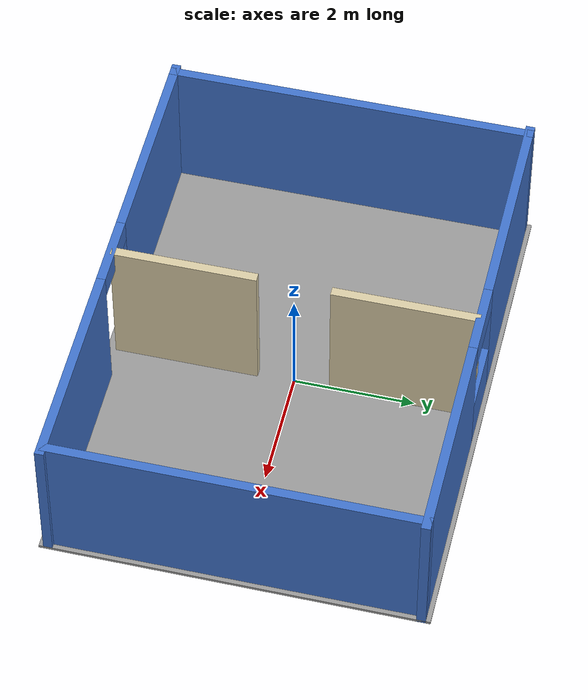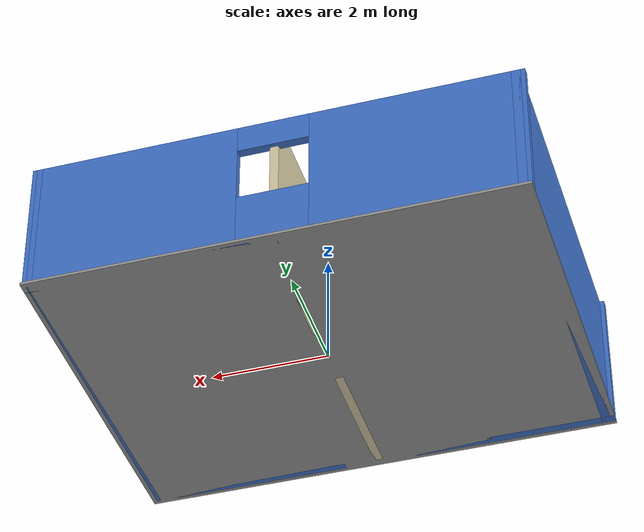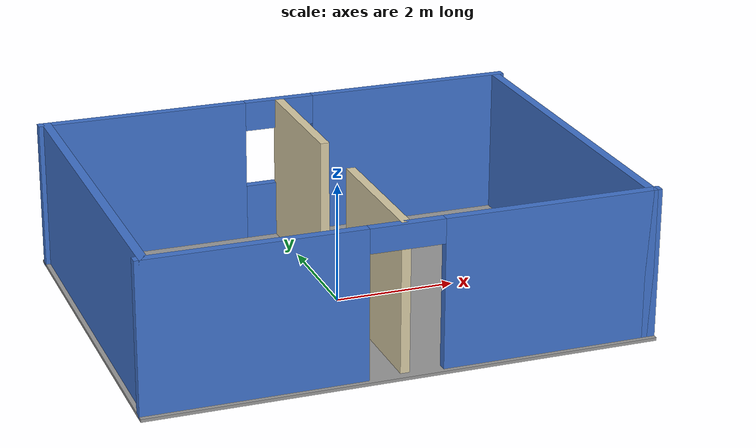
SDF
<?xml version="1.0" ?>
<sdf version="1.6">
  <model name="my_building">
    <static>true</static>
    <link name="Floor">
      <pose>0 0 0.025 0 0 0</pose>
      <collision name="c">
        <geometry><box><size>8.3 6.3 0.05</size></box></geometry>
      </collision>
      <visual name="v">
        <geometry><box><size>8.3 6.3 0.05</size></box></geometry>
        <material><ambient>0.6 0.6 0.6 1</ambient><diffuse>0.6 0.6 0.6 1</diffuse></material>
      </visual>
    </link>
    <link name="Wall_N_left">
      <pose>-2.375 3 1.25 0 0 0</pose>
      <collision name="c">
        <geometry><box><size>3.55 0.15 2.5</size></box></geometry>
      </collision>
      <visual name="v">
        <geometry><box><size>3.55 0.15 2.5</size></box></geometry>
        <material><ambient>0.25 0.45 0.8 1</ambient><diffuse>0.25 0.45 0.8 1</diffuse></material>
      </visual>
    </link>
    <link name="Wall_N_right">
      <pose>2.375 3 1.25 0 0 0</pose>
      <collision name="c">
        <geometry><box><size>3.55 0.15 2.5</size></box></geometry>
      </collision>
      <visual name="v">
        <geometry><box><size>3.55 0.15 2.5</size></box></geometry>
        <material><ambient>0.25 0.45 0.8 1</ambient><diffuse>0.25 0.45 0.8 1</diffuse></material>
      </visual>
    </link>
    <link name="Wall_N_sill">
      <pose>0 3 0.5 0 0 0</pose>
      <collision name="c">
        <geometry><box><size>1.2 0.15 1.0</size></box></geometry>
      </collision>
      <visual name="v">
        <geometry><box><size>1.2 0.15 1.0</size></box></geometry>
        <material><ambient>0.25 0.45 0.8 1</ambient><diffuse>0.25 0.45 0.8 1</diffuse></material>
      </visual>
    </link>
    <link name="Wall_N_lintel">
      <pose>0 3 2.25 0 0 0</pose>
      <collision name="c">
        <geometry><box><size>1.2 0.15 0.5</size></box></geometry>
      </collision>
      <visual name="v">
        <geometry><box><size>1.2 0.15 0.5</size></box></geometry>
        <material><ambient>0.25 0.45 0.8 1</ambient><diffuse>0.25 0.45 0.8 1</diffuse></material>
      </visual>
    </link>
    <link name="Wall_S_left">
      <pose>-2.375 -3 1.25 0 0 0</pose>
      <collision name="c">
        <geometry><box><size>3.55 0.15 2.5</size></box></geometry>
      </collision>
      <visual name="v">
        <geometry><box><size>3.55 0.15 2.5</size></box></geometry>
        <material><ambient>0.25 0.45 0.8 1</ambient><diffuse>0.25 0.45 0.8 1</diffuse></material>
      </visual>
    </link>
    <link name="Wall_S_right">
      <pose>2.375 -3 1.25 0 0 0</pose>
      <collision name="c">
        <geometry><box><size>3.55 0.15 2.5</size></box></geometry>
      </collision>
      <visual name="v">
        <geometry><box><size>3.55 0.15 2.5</size></box></geometry>
        <material><ambient>0.25 0.45 0.8 1</ambient><diffuse>0.25 0.45 0.8 1</diffuse></material>
      </visual>
    </link>
    <link name="Wall_S_lintel">
      <pose>0 -3 2.3 0 0 0</pose>
      <collision name="c">
        <geometry><box><size>1.2 0.15 0.4</size></box></geometry>
      </collision>
      <visual name="v">
        <geometry><box><size>1.2 0.15 0.4</size></box></geometry>
        <material><ambient>0.25 0.45 0.8 1</ambient><diffuse>0.25 0.45 0.8 1</diffuse></material>
      </visual>
    </link>
    <link name="Wall_E">
      <pose>4 0 1.25 0 0 0</pose>
      <collision name="c">
        <geometry><box><size>0.15 6.15 2.5</size></box></geometry>
      </collision>
      <visual name="v">
        <geometry><box><size>0.15 6.15 2.5</size></box></geometry>
        <material><ambient>0.25 0.45 0.8 1</ambient><diffuse>0.25 0.45 0.8 1</diffuse></material>
      </visual>
    </link>
    <link name="Wall_W">
      <pose>-4 0 1.25 0 0 0</pose>
      <collision name="c">
        <geometry><box><size>0.15 6.15 2.5</size></box></geometry>
      </collision>
      <visual name="v">
        <geometry><box><size>0.15 6.15 2.5</size></box></geometry>
        <material><ambient>0.25 0.45 0.8 1</ambient><diffuse>0.25 0.45 0.8 1</diffuse></material>
      </visual>
    </link>
    <link name="Wall_D_north">
      <pose>0 1.8 1.25 0 0 0</pose>
      <collision name="c">
        <geometry><box><size>0.15 2.4 2.5</size></box></geometry>
      </collision>
      <visual name="v">
        <geometry><box><size>0.15 2.4 2.5</size></box></geometry>
        <material><ambient>0.85 0.8 0.65 1</ambient><diffuse>0.85 0.8 0.65 1</diffuse></material>
      </visual>
    </link>
    <link name="Wall_D_south">
      <pose>0 -1.8 1.25 0 0 0</pose>
      <collision name="c">
        <geometry><box><size>0.15 2.4 2.5</size></box></geometry>
      </collision>
      <visual name="v">
        <geometry><box><size>0.15 2.4 2.5</size></box></geometry>
        <material><ambient>0.85 0.8 0.65 1</ambient><diffuse>0.85 0.8 0.65 1</diffuse></material>
      </visual>
    </link>
  </model>
</sdf>
